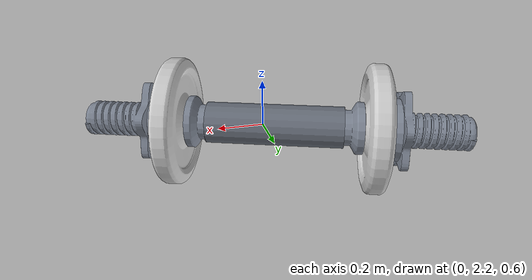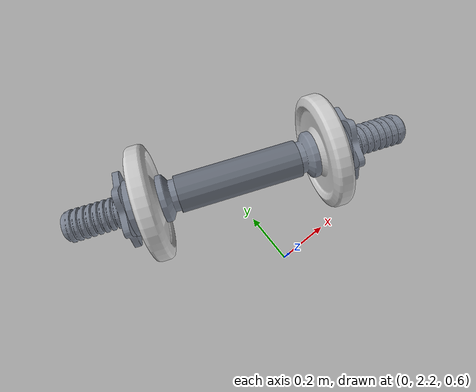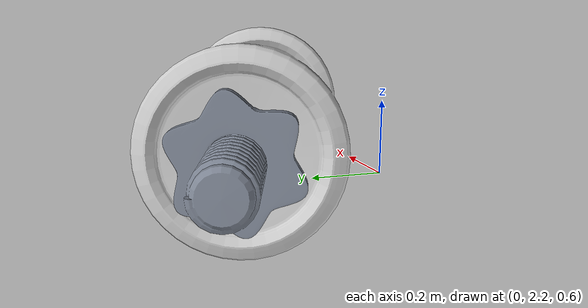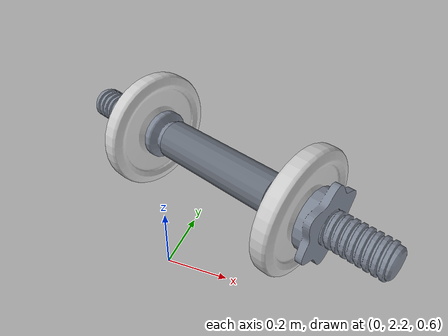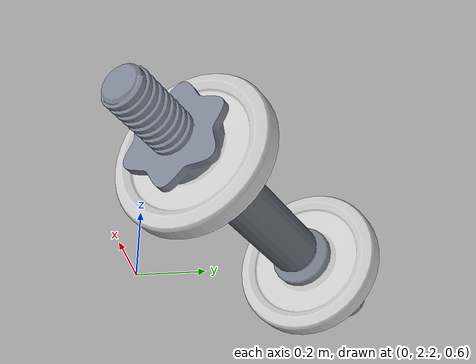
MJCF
<mujoco model="weight_3">
  <compiler angle="radian" meshdir="assets" texturedir="assets" autolimits="true"/>
  <default>
    <default class="visual">
      <geom group="2" type="mesh" contype="0" conaffinity="0"/>
    </default>
    <default class="collision">
      <geom group="3" type="mesh"  solimp="0.95 0.99 0.001" solref="0.004 1" friction="1.0 0.005 0.0001"/>
    </default>
  </default>
  <asset>
    <material name="Metal_black" specular="0.5" shininess="0.36" rgba="0.800000 0.800000 0.800000 1.000000"/>
    <material name="Stainless_Steel" specular="0.5" shininess="0.7225" rgba="0.492784 0.524263 0.580810 1.000000"/>
    <material name="Stainless_Steel_grip" specular="0.5" shininess="0.49" rgba="0.407240 0.433089 0.479510 1.000000"/>
    <mesh file="weight_3_0.obj"/>
    <mesh file="weight_3_1.obj"/>
    <mesh file="weight_3_2.obj"/>
    <mesh file="weight_3_collision_0.obj"/>
    <mesh file="weight_3_collision_1.obj"/>
    <mesh file="weight_3_collision_2.obj"/>
    <mesh file="weight_3_collision_3.obj"/>
    <mesh file="weight_3_collision_4.obj"/>
    <mesh file="weight_3_collision_5.obj"/>
    <mesh file="weight_3_collision_6.obj"/>
    <mesh file="weight_3_collision_7.obj"/>
    <mesh file="weight_3_collision_8.obj"/>
    <mesh file="weight_3_collision_9.obj"/>
    <mesh file="weight_3_collision_10.obj"/>
    <mesh file="weight_3_collision_11.obj"/>
    <mesh file="weight_3_collision_12.obj"/>
    <mesh file="weight_3_collision_13.obj"/>
    <mesh file="weight_3_collision_14.obj"/>
    <mesh file="weight_3_collision_15.obj"/>
    <mesh file="weight_3_collision_16.obj"/>
    <mesh file="weight_3_collision_17.obj"/>
    <mesh file="weight_3_collision_18.obj"/>
    <mesh file="weight_3_collision_19.obj"/>
    <mesh file="weight_3_collision_20.obj"/>
    <mesh file="weight_3_collision_21.obj"/>
    <mesh file="weight_3_collision_22.obj"/>
    <mesh file="weight_3_collision_23.obj"/>
    <mesh file="weight_3_collision_24.obj"/>
    <mesh file="weight_3_collision_25.obj"/>
    <mesh file="weight_3_collision_26.obj"/>
    <mesh file="weight_3_collision_27.obj"/>
    <mesh file="weight_3_collision_28.obj"/>
    <mesh file="weight_3_collision_29.obj"/>
    <mesh file="weight_3_collision_30.obj"/>
    <mesh file="weight_3_collision_31.obj"/>
    <mesh file="weight_3_collision_32.obj"/>
    <mesh file="weight_3_collision_33.obj"/>
    <mesh file="weight_3_collision_34.obj"/>
    <mesh file="weight_3_collision_35.obj"/>
    <mesh file="weight_3_collision_36.obj"/>
    <mesh file="weight_3_collision_37.obj"/>
  </asset>
  <worldbody>
    <body name="weight_3">
      <geom mesh="weight_3_0" material="Stainless_Steel_grip" class="visual"/>
      <geom mesh="weight_3_1" material="Metal_black" class="visual"/>
      <geom mesh="weight_3_2" material="Stainless_Steel" class="visual"/>
      <geom mesh="weight_3_collision_0" rgba="0.6688680051047545 0.2354349643402599 0.9391277589554634 1" class="collision"/>
      <geom mesh="weight_3_collision_1" rgba="0.044338930902710016 0.5121980477571499 0.7985923154576693 1" class="collision"/>
      <geom mesh="weight_3_collision_2" rgba="0.46447917710904363 0.2513099418947258 0.05974322932561016 1" class="collision"/>
      <geom mesh="weight_3_collision_3" rgba="0.2947870858108449 0.6789446194356926 0.39637167795674 1" class="collision"/>
      <geom mesh="weight_3_collision_4" rgba="0.7230025029564849 0.8046139155668209 0.9330987960132456 1" class="collision"/>
      <geom mesh="weight_3_collision_5" rgba="0.021423574398896195 0.9431485164563892 0.29455655561408767 1" class="collision"/>
      <geom mesh="weight_3_collision_6" rgba="0.6132528845956646 0.341878643717063 0.9968459907323272 1" class="collision"/>
      <geom mesh="weight_3_collision_7" rgba="0.9631382518413493 0.3813506101779093 0.9566431417157385 1" class="collision"/>
      <geom mesh="weight_3_collision_8" rgba="0.6661476194925162 0.8372632854314135 0.8781561576656405 1" class="collision"/>
      <geom mesh="weight_3_collision_9" rgba="0.8045216817619744 0.7448304473611966 0.14081785151446624 1" class="collision"/>
      <geom mesh="weight_3_collision_10" rgba="0.6731700772650224 0.9881002141283175 0.1671264261112715 1" class="collision"/>
      <geom mesh="weight_3_collision_11" rgba="0.9496741427708042 0.8909703231605587 0.8028189900112637 1" class="collision"/>
      <geom mesh="weight_3_collision_12" rgba="0.9434681507013425 0.23150917348094113 0.024200179568845015 1" class="collision"/>
      <geom mesh="weight_3_collision_13" rgba="0.4514420519655167 0.6646631581938237 0.46168758818223554 1" class="collision"/>
      <geom mesh="weight_3_collision_14" rgba="0.6019542982568218 0.2833136514884722 0.7057440040221276 1" class="collision"/>
      <geom mesh="weight_3_collision_15" rgba="0.33172086637833653 0.9877153013056413 0.7822189617899796 1" class="collision"/>
      <geom mesh="weight_3_collision_16" rgba="0.7961009971623038 0.35249861369798474 0.20633608056649944 1" class="collision"/>
      <geom mesh="weight_3_collision_17" rgba="0.8785527694589035 0.56292768293195 0.48061326745380606 1" class="collision"/>
      <geom mesh="weight_3_collision_18" rgba="0.2530457751929194 0.2177147726291837 0.26368915649393554 1" class="collision"/>
      <geom mesh="weight_3_collision_19" rgba="0.43156479913471724 0.09596698420224103 0.24610940899394285 1" class="collision"/>
      <geom mesh="weight_3_collision_20" rgba="0.5440689163073968 0.6263428461616234 0.2680412405991346 1" class="collision"/>
      <geom mesh="weight_3_collision_21" rgba="0.6088397631409336 0.2329230525299001 0.0529552173254898 1" class="collision"/>
      <geom mesh="weight_3_collision_22" rgba="0.8715214188132743 0.6498203044621255 0.20368155497501628 1" class="collision"/>
      <geom mesh="weight_3_collision_23" rgba="0.8875956323352505 0.43740081676045284 0.6327739987865098 1" class="collision"/>
      <geom mesh="weight_3_collision_24" rgba="0.5880859754765018 0.889745294865127 0.16105010057397084 1" class="collision"/>
      <geom mesh="weight_3_collision_25" rgba="0.5954553734934455 0.9996714411390384 0.038060972459909026 1" class="collision"/>
      <geom mesh="weight_3_collision_26" rgba="0.7776725718892014 0.2885645156806881 0.5893646890909674 1" class="collision"/>
      <geom mesh="weight_3_collision_27" rgba="0.06765693043453413 0.5595371115300714 0.6461833345860384 1" class="collision"/>
      <geom mesh="weight_3_collision_28" rgba="0.6589720762352492 0.6785508100635095 0.4256025396063102 1" class="collision"/>
      <geom mesh="weight_3_collision_29" rgba="0.26995637924237315 0.27584106447644374 0.6538295834104247 1" class="collision"/>
      <geom mesh="weight_3_collision_30" rgba="0.997992621785317 0.34227429429903966 0.016093827122375948 1" class="collision"/>
      <geom mesh="weight_3_collision_31" rgba="0.03907771205103905 0.59540509347178 0.25688947307375587 1" class="collision"/>
      <geom mesh="weight_3_collision_32" rgba="0.03391360839941582 0.8312042739443869 0.24158083923987161 1" class="collision"/>
      <geom mesh="weight_3_collision_33" rgba="0.28969000878308104 0.8358498538484394 0.986079253894264 1" class="collision"/>
      <geom mesh="weight_3_collision_34" rgba="0.4976868610369698 0.9513285244083262 0.23506090729554818 1" class="collision"/>
      <geom mesh="weight_3_collision_35" rgba="0.7936626533577518 0.28848967624251154 0.05868712209211657 1" class="collision"/>
      <geom mesh="weight_3_collision_36" rgba="0.6412184047797945 0.6045857122440412 0.6988388372677476 1" class="collision"/>
      <geom mesh="weight_3_collision_37" rgba="0.7501569045843087 0.9374550680832323 0.12556112807507824 1" class="collision"/>
    </body>
  </worldbody>
</mujoco>
